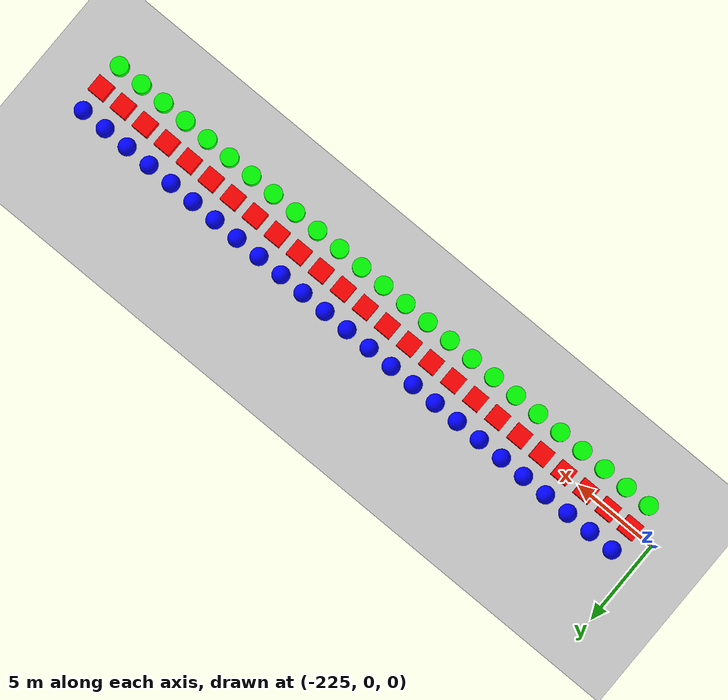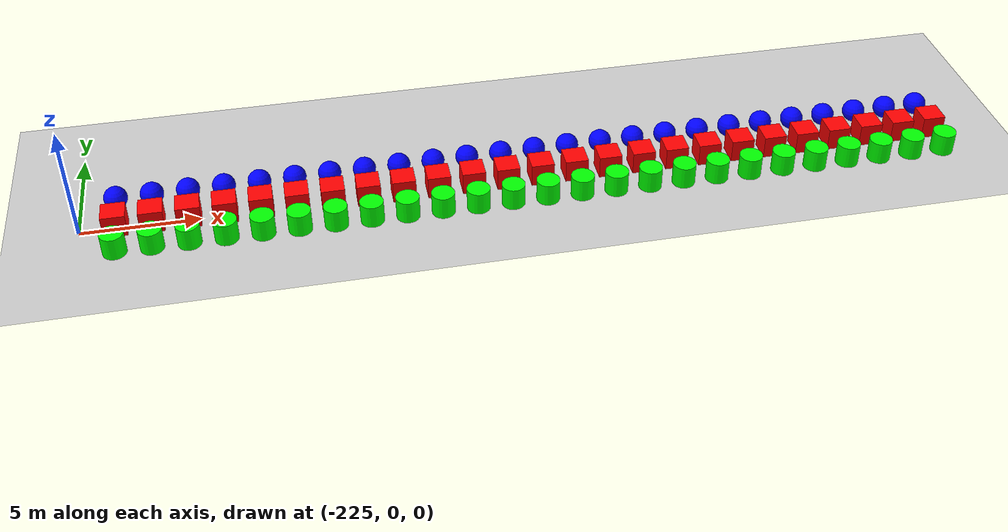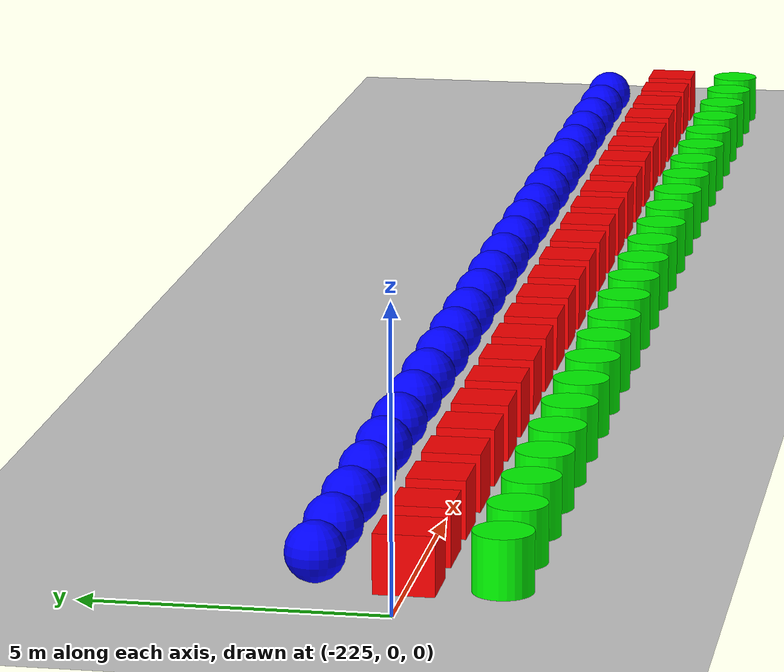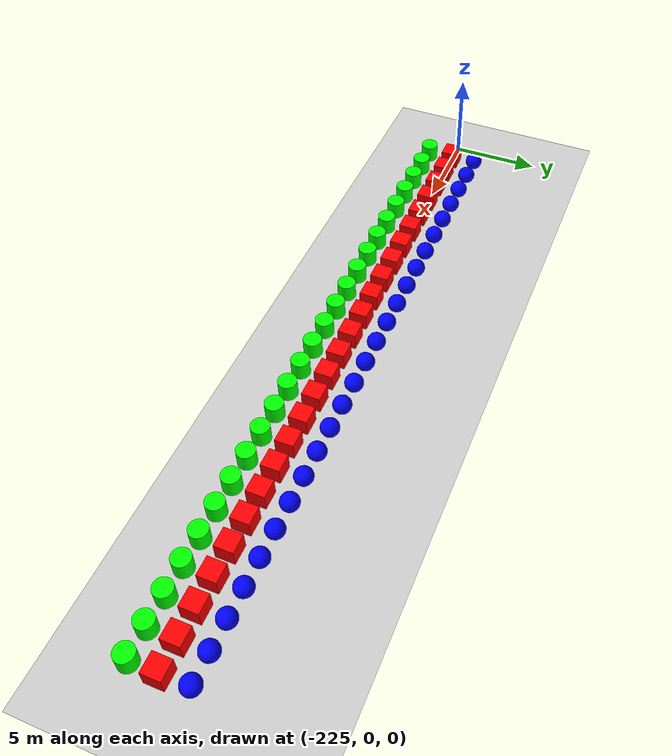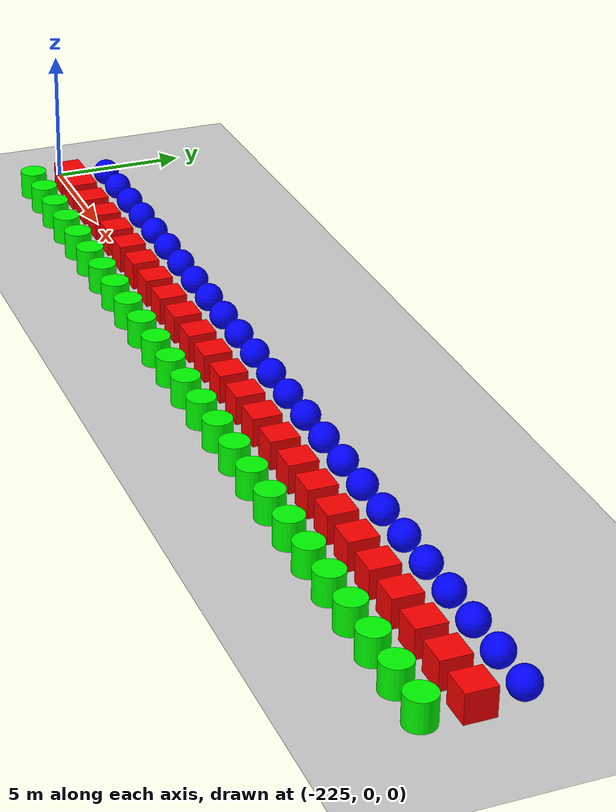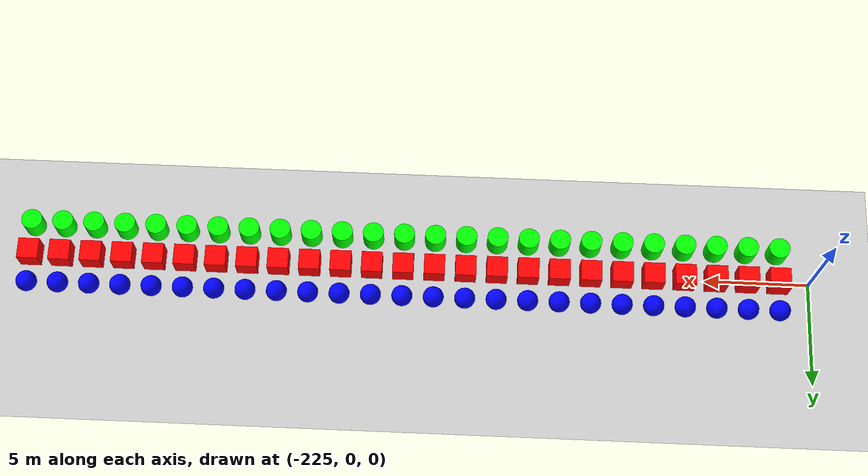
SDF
<sdf version="1.6">
 <world name="shapes">
  <model name="ground_plane">
   <static>true</static>
   <link name="link">
    <collision name="collision">
     <geometry><plane><normal>0 0 1</normal><size>100 100</size></plane></geometry>
    </collision>
    <visual name="visual">
     <geometry><plane><normal>0 0 1</normal><size>100 100</size></plane></geometry>
     <material>
      <ambient>0.8 0.8 0.8 1</ambient>
      <diffuse>0.8 0.8 0.8 1</diffuse>
      <specular>0.8 0.8 0.8 1</specular>
     </material>
    </visual>
   </link>
  </model>
  <model name="box_351">
   <static>false</static>
   <pose>-223.5 0 0.5 0 0 0</pose>
   <link name="box_link">
    <inertial>
     <inertia><ixx>1</ixx><ixy>0</ixy><ixz>0</ixz><iyy>1</iyy><iyz>0</iyz><izz>1</izz></inertia>
     <mass>1.0</mass>
    </inertial>
    <collision name="box_collision"><geometry><box><size>1 1 1</size></box></geometry></collision>
    <visual name="box_visual">
     <geometry><box><size>1 1 1</size></box></geometry>
     <material><ambient>1 0 0 1</ambient><diffuse>1 0 0 1</diffuse><specular>1 0 0 1</specular></material>
    </visual>
   </link>
  </model>
  <model name="cylinder_351">
   <static>false</static>
   <pose>-223.5 -1.5 0.5 0 0 0</pose>
   <link name="cylinder_link">
    <inertial>
     <inertia><ixx>2</ixx><ixy>0</ixy><ixz>0</ixz><iyy>2</iyy><iyz>0</iyz><izz>2</izz></inertia>
     <mass>2.0</mass>
    </inertial>
    <collision name="cylinder_collision">
     <geometry><cylinder><radius>0.5</radius><length>1.0</length></cylinder></geometry>
    </collision>
    <visual name="cylinder_visual">
     <geometry><cylinder><radius>0.5</radius><length>1.0</length></cylinder></geometry>
     <material><ambient>0 1 0 1</ambient><diffuse>0 1 0 1</diffuse><specular>0 1 0 1</specular></material>
    </visual>
   </link>
  </model>
  <model name="sphere_351">
   <static>false</static>
   <pose>-223.5 1.5 0.5 0 0 0</pose>
   <link name="sphere_link">
    <inertial>
     <inertia><ixx>3</ixx><ixy>0</ixy><ixz>0</ixz><iyy>3</iyy><iyz>0</iyz><izz>3</izz></inertia>
     <mass>3.0</mass>
    </inertial>
    <collision name="sphere_collision"><geometry><sphere><radius>0.5</radius></sphere></geometry></collision>
    <visual name="sphere_visual">
     <geometry><sphere><radius>0.5</radius></sphere></geometry>
     <material><ambient>0 0 1 1</ambient><diffuse>0 0 1 1</diffuse><specular>0 0 1 1</specular></material>
    </visual>
   </link>
  </model>
  <model name="box_352">
   <static>false</static>
   <pose>-222.0 0 0.5 0 0 0</pose>
   <link name="box_link">
    <inertial>
     <inertia><ixx>1</ixx><ixy>0</ixy><ixz>0</ixz><iyy>1</iyy><iyz>0</iyz><izz>1</izz></inertia>
     <mass>1.0</mass>
    </inertial>
    <collision name="box_collision"><geometry><box><size>1 1 1</size></box></geometry></collision>
    <visual name="box_visual">
     <geometry><box><size>1 1 1</size></box></geometry>
     <material><ambient>1 0 0 1</ambient><diffuse>1 0 0 1</diffuse><specular>1 0 0 1</specular></material>
    </visual>
   </link>
  </model>
  <model name="cylinder_352">
   <static>false</static>
   <pose>-222.0 -1.5 0.5 0 0 0</pose>
   <link name="cylinder_link">
    <inertial>
     <inertia><ixx>2</ixx><ixy>0</ixy><ixz>0</ixz><iyy>2</iyy><iyz>0</iyz><izz>2</izz></inertia>
     <mass>2.0</mass>
    </inertial>
    <collision name="cylinder_collision">
     <geometry><cylinder><radius>0.5</radius><length>1.0</length></cylinder></geometry>
    </collision>
    <visual name="cylinder_visual">
     <geometry><cylinder><radius>0.5</radius><length>1.0</length></cylinder></geometry>
     <material><ambient>0 1 0 1</ambient><diffuse>0 1 0 1</diffuse><specular>0 1 0 1</specular></material>
    </visual>
   </link>
  </model>
  <model name="sphere_352">
   <static>false</static>
   <pose>-222.0 1.5 0.5 0 0 0</pose>
   <link name="sphere_link">
    <inertial>
     <inertia><ixx>3</ixx><ixy>0</ixy><ixz>0</ixz><iyy>3</iyy><iyz>0</iyz><izz>3</izz></inertia>
     <mass>3.0</mass>
    </inertial>
    <collision name="sphere_collision"><geometry><sphere><radius>0.5</radius></sphere></geometry></collision>
    <visual name="sphere_visual">
     <geometry><sphere><radius>0.5</radius></sphere></geometry>
     <material><ambient>0 0 1 1</ambient><diffuse>0 0 1 1</diffuse><specular>0 0 1 1</specular></material>
    </visual>
   </link>
  </model>
  <model name="box_353">
   <static>false</static>
   <pose>-220.5 0 0.5 0 0 0</pose>
   <link name="box_link">
    <inertial>
     <inertia><ixx>1</ixx><ixy>0</ixy><ixz>0</ixz><iyy>1</iyy><iyz>0</iyz><izz>1</izz></inertia>
     <mass>1.0</mass>
    </inertial>
    <collision name="box_collision"><geometry><box><size>1 1 1</size></box></geometry></collision>
    <visual name="box_visual">
     <geometry><box><size>1 1 1</size></box></geometry>
     <material><ambient>1 0 0 1</ambient><diffuse>1 0 0 1</diffuse><specular>1 0 0 1</specular></material>
    </visual>
   </link>
  </model>
  <model name="cylinder_353">
   <static>false</static>
   <pose>-220.5 -1.5 0.5 0 0 0</pose>
   <link name="cylinder_link">
    <inertial>
     <inertia><ixx>2</ixx><ixy>0</ixy><ixz>0</ixz><iyy>2</iyy><iyz>0</iyz><izz>2</izz></inertia>
     <mass>2.0</mass>
    </inertial>
    <collision name="cylinder_collision">
     <geometry><cylinder><radius>0.5</radius><length>1.0</length></cylinder></geometry>
    </collision>
    <visual name="cylinder_visual">
     <geometry><cylinder><radius>0.5</radius><length>1.0</length></cylinder></geometry>
     <material><ambient>0 1 0 1</ambient><diffuse>0 1 0 1</diffuse><specular>0 1 0 1</specular></material>
    </visual>
   </link>
  </model>
  <model name="sphere_353">
   <static>false</static>
   <pose>-220.5 1.5 0.5 0 0 0</pose>
   <link name="sphere_link">
    <inertial>
     <inertia><ixx>3</ixx><ixy>0</ixy><ixz>0</ixz><iyy>3</iyy><iyz>0</iyz><izz>3</izz></inertia>
     <mass>3.0</mass>
    </inertial>
    <collision name="sphere_collision"><geometry><sphere><radius>0.5</radius></sphere></geometry></collision>
    <visual name="sphere_visual">
     <geometry><sphere><radius>0.5</radius></sphere></geometry>
     <material><ambient>0 0 1 1</ambient><diffuse>0 0 1 1</diffuse><specular>0 0 1 1</specular></material>
    </visual>
   </link>
  </model>
  <model name="box_354">
   <static>false</static>
   <pose>-219.0 0 0.5 0 0 0</pose>
   <link name="box_link">
    <inertial>
     <inertia><ixx>1</ixx><ixy>0</ixy><ixz>0</ixz><iyy>1</iyy><iyz>0</iyz><izz>1</izz></inertia>
     <mass>1.0</mass>
    </inertial>
    <collision name="box_collision"><geometry><box><size>1 1 1</size></box></geometry></collision>
    <visual name="box_visual">
     <geometry><box><size>1 1 1</size></box></geometry>
     <material><ambient>1 0 0 1</ambient><diffuse>1 0 0 1</diffuse><specular>1 0 0 1</specular></material>
    </visual>
   </link>
  </model>
  <model name="cylinder_354">
   <static>false</static>
   <pose>-219.0 -1.5 0.5 0 0 0</pose>
   <link name="cylinder_link">
    <inertial>
     <inertia><ixx>2</ixx><ixy>0</ixy><ixz>0</ixz><iyy>2</iyy><iyz>0</iyz><izz>2</izz></inertia>
     <mass>2.0</mass>
    </inertial>
    <collision name="cylinder_collision">
     <geometry><cylinder><radius>0.5</radius><length>1.0</length></cylinder></geometry>
    </collision>
    <visual name="cylinder_visual">
     <geometry><cylinder><radius>0.5</radius><length>1.0</length></cylinder></geometry>
     <material><ambient>0 1 0 1</ambient><diffuse>0 1 0 1</diffuse><specular>0 1 0 1</specular></material>
    </visual>
   </link>
  </model>
  <model name="sphere_354">
   <static>false</static>
   <pose>-219.0 1.5 0.5 0 0 0</pose>
   <link name="sphere_link">
    <inertial>
     <inertia><ixx>3</ixx><ixy>0</ixy><ixz>0</ixz><iyy>3</iyy><iyz>0</iyz><izz>3</izz></inertia>
     <mass>3.0</mass>
    </inertial>
    <collision name="sphere_collision"><geometry><sphere><radius>0.5</radius></sphere></geometry></collision>
    <visual name="sphere_visual">
     <geometry><sphere><radius>0.5</radius></sphere></geometry>
     <material><ambient>0 0 1 1</ambient><diffuse>0 0 1 1</diffuse><specular>0 0 1 1</specular></material>
    </visual>
   </link>
  </model>
  <model name="box_355">
   <static>false</static>
   <pose>-217.5 0 0.5 0 0 0</pose>
   <link name="box_link">
    <inertial>
     <inertia><ixx>1</ixx><ixy>0</ixy><ixz>0</ixz><iyy>1</iyy><iyz>0</iyz><izz>1</izz></inertia>
     <mass>1.0</mass>
    </inertial>
    <collision name="box_collision"><geometry><box><size>1 1 1</size></box></geometry></collision>
    <visual name="box_visual">
     <geometry><box><size>1 1 1</size></box></geometry>
     <material><ambient>1 0 0 1</ambient><diffuse>1 0 0 1</diffuse><specular>1 0 0 1</specular></material>
    </visual>
   </link>
  </model>
  <model name="cylinder_355">
   <static>false</static>
   <pose>-217.5 -1.5 0.5 0 0 0</pose>
   <link name="cylinder_link">
    <inertial>
     <inertia><ixx>2</ixx><ixy>0</ixy><ixz>0</ixz><iyy>2</iyy><iyz>0</iyz><izz>2</izz></inertia>
     <mass>2.0</mass>
    </inertial>
    <collision name="cylinder_collision">
     <geometry><cylinder><radius>0.5</radius><length>1.0</length></cylinder></geometry>
    </collision>
    <visual name="cylinder_visual">
     <geometry><cylinder><radius>0.5</radius><length>1.0</length></cylinder></geometry>
     <material><ambient>0 1 0 1</ambient><diffuse>0 1 0 1</diffuse><specular>0 1 0 1</specular></material>
    </visual>
   </link>
  </model>
  <model name="sphere_355">
   <static>false</static>
   <pose>-217.5 1.5 0.5 0 0 0</pose>
   <link name="sphere_link">
    <inertial>
     <inertia><ixx>3</ixx><ixy>0</ixy><ixz>0</ixz><iyy>3</iyy><iyz>0</iyz><izz>3</izz></inertia>
     <mass>3.0</mass>
    </inertial>
    <collision name="sphere_collision"><geometry><sphere><radius>0.5</radius></sphere></geometry></collision>
    <visual name="sphere_visual">
     <geometry><sphere><radius>0.5</radius></sphere></geometry>
     <material><ambient>0 0 1 1</ambient><diffuse>0 0 1 1</diffuse><specular>0 0 1 1</specular></material>
    </visual>
   </link>
  </model>
  <model name="box_356">
   <static>false</static>
   <pose>-216.0 0 0.5 0 0 0</pose>
   <link name="box_link">
    <inertial>
     <inertia><ixx>1</ixx><ixy>0</ixy><ixz>0</ixz><iyy>1</iyy><iyz>0</iyz><izz>1</izz></inertia>
     <mass>1.0</mass>
    </inertial>
    <collision name="box_collision"><geometry><box><size>1 1 1</size></box></geometry></collision>
    <visual name="box_visual">
     <geometry><box><size>1 1 1</size></box></geometry>
     <material><ambient>1 0 0 1</ambient><diffuse>1 0 0 1</diffuse><specular>1 0 0 1</specular></material>
    </visual>
   </link>
  </model>
  <model name="cylinder_356">
   <static>false</static>
   <pose>-216.0 -1.5 0.5 0 0 0</pose>
   <link name="cylinder_link">
    <inertial>
     <inertia><ixx>2</ixx><ixy>0</ixy><ixz>0</ixz><iyy>2</iyy><iyz>0</iyz><izz>2</izz></inertia>
     <mass>2.0</mass>
    </inertial>
    <collision name="cylinder_collision">
     <geometry><cylinder><radius>0.5</radius><length>1.0</length></cylinder></geometry>
    </collision>
    <visual name="cylinder_visual">
     <geometry><cylinder><radius>0.5</radius><length>1.0</length></cylinder></geometry>
     <material><ambient>0 1 0 1</ambient><diffuse>0 1 0 1</diffuse><specular>0 1 0 1</specular></material>
    </visual>
   </link>
  </model>
  <model name="sphere_356">
   <static>false</static>
   <pose>-216.0 1.5 0.5 0 0 0</pose>
   <link name="sphere_link">
    <inertial>
     <inertia><ixx>3</ixx><ixy>0</ixy><ixz>0</ixz><iyy>3</iyy><iyz>0</iyz><izz>3</izz></inertia>
     <mass>3.0</mass>
    </inertial>
    <collision name="sphere_collision"><geometry><sphere><radius>0.5</radius></sphere></geometry></collision>
    <visual name="sphere_visual">
     <geometry><sphere><radius>0.5</radius></sphere></geometry>
     <material><ambient>0 0 1 1</ambient><diffuse>0 0 1 1</diffuse><specular>0 0 1 1</specular></material>
    </visual>
   </link>
  </model>
  <model name="box_357">
   <static>false</static>
   <pose>-214.5 0 0.5 0 0 0</pose>
   <link name="box_link">
    <inertial>
     <inertia><ixx>1</ixx><ixy>0</ixy><ixz>0</ixz><iyy>1</iyy><iyz>0</iyz><izz>1</izz></inertia>
     <mass>1.0</mass>
    </inertial>
    <collision name="box_collision"><geometry><box><size>1 1 1</size></box></geometry></collision>
    <visual name="box_visual">
     <geometry><box><size>1 1 1</size></box></geometry>
     <material><ambient>1 0 0 1</ambient><diffuse>1 0 0 1</diffuse><specular>1 0 0 1</specular></material>
    </visual>
   </link>
  </model>
  <model name="cylinder_357">
   <static>false</static>
   <pose>-214.5 -1.5 0.5 0 0 0</pose>
   <link name="cylinder_link">
    <inertial>
     <inertia><ixx>2</ixx><ixy>0</ixy><ixz>0</ixz><iyy>2</iyy><iyz>0</iyz><izz>2</izz></inertia>
     <mass>2.0</mass>
    </inertial>
    <collision name="cylinder_collision">
     <geometry><cylinder><radius>0.5</radius><length>1.0</length></cylinder></geometry>
    </collision>
    <visual name="cylinder_visual">
     <geometry><cylinder><radius>0.5</radius><length>1.0</length></cylinder></geometry>
     <material><ambient>0 1 0 1</ambient><diffuse>0 1 0 1</diffuse><specular>0 1 0 1</specular></material>
    </visual>
   </link>
  </model>
  <model name="sphere_357">
   <static>false</static>
   <pose>-214.5 1.5 0.5 0 0 0</pose>
   <link name="sphere_link">
    <inertial>
     <inertia><ixx>3</ixx><ixy>0</ixy><ixz>0</ixz><iyy>3</iyy><iyz>0</iyz><izz>3</izz></inertia>
     <mass>3.0</mass>
    </inertial>
    <collision name="sphere_collision"><geometry><sphere><radius>0.5</radius></sphere></geometry></collision>
    <visual name="sphere_visual">
     <geometry><sphere><radius>0.5</radius></sphere></geometry>
     <material><ambient>0 0 1 1</ambient><diffuse>0 0 1 1</diffuse><specular>0 0 1 1</specular></material>
    </visual>
   </link>
  </model>
  <model name="box_358">
   <static>false</static>
   <pose>-213.0 0 0.5 0 0 0</pose>
   <link name="box_link">
    <inertial>
     <inertia><ixx>1</ixx><ixy>0</ixy><ixz>0</ixz><iyy>1</iyy><iyz>0</iyz><izz>1</izz></inertia>
     <mass>1.0</mass>
    </inertial>
    <collision name="box_collision"><geometry><box><size>1 1 1</size></box></geometry></collision>
    <visual name="box_visual">
     <geometry><box><size>1 1 1</size></box></geometry>
     <material><ambient>1 0 0 1</ambient><diffuse>1 0 0 1</diffuse><specular>1 0 0 1</specular></material>
    </visual>
   </link>
  </model>
  <model name="cylinder_358">
   <static>false</static>
   <pose>-213.0 -1.5 0.5 0 0 0</pose>
   <link name="cylinder_link">
    <inertial>
     <inertia><ixx>2</ixx><ixy>0</ixy><ixz>0</ixz><iyy>2</iyy><iyz>0</iyz><izz>2</izz></inertia>
     <mass>2.0</mass>
    </inertial>
    <collision name="cylinder_collision">
     <geometry><cylinder><radius>0.5</radius><length>1.0</length></cylinder></geometry>
    </collision>
    <visual name="cylinder_visual">
     <geometry><cylinder><radius>0.5</radius><length>1.0</length></cylinder></geometry>
     <material><ambient>0 1 0 1</ambient><diffuse>0 1 0 1</diffuse><specular>0 1 0 1</specular></material>
    </visual>
   </link>
  </model>
  <model name="sphere_358">
   <static>false</static>
   <pose>-213.0 1.5 0.5 0 0 0</pose>
   <link name="sphere_link">
    <inertial>
     <inertia><ixx>3</ixx><ixy>0</ixy><ixz>0</ixz><iyy>3</iyy><iyz>0</iyz><izz>3</izz></inertia>
     <mass>3.0</mass>
    </inertial>
    <collision name="sphere_collision"><geometry><sphere><radius>0.5</radius></sphere></geometry></collision>
    <visual name="sphere_visual">
     <geometry><sphere><radius>0.5</radius></sphere></geometry>
     <material><ambient>0 0 1 1</ambient><diffuse>0 0 1 1</diffuse><specular>0 0 1 1</specular></material>
    </visual>
   </link>
  </model>
  <model name="box_359">
   <static>false</static>
   <pose>-211.5 0 0.5 0 0 0</pose>
   <link name="box_link">
    <inertial>
     <inertia><ixx>1</ixx><ixy>0</ixy><ixz>0</ixz><iyy>1</iyy><iyz>0</iyz><izz>1</izz></inertia>
     <mass>1.0</mass>
    </inertial>
    <collision name="box_collision"><geometry><box><size>1 1 1</size></box></geometry></collision>
    <visual name="box_visual">
     <geometry><box><size>1 1 1</size></box></geometry>
     <material><ambient>1 0 0 1</ambient><diffuse>1 0 0 1</diffuse><specular>1 0 0 1</specular></material>
    </visual>
   </link>
  </model>
  <model name="cylinder_359">
   <static>false</static>
   <pose>-211.5 -1.5 0.5 0 0 0</pose>
   <link name="cylinder_link">
    <inertial>
     <inertia><ixx>2</ixx><ixy>0</ixy><ixz>0</ixz><iyy>2</iyy><iyz>0</iyz><izz>2</izz></inertia>
     <mass>2.0</mass>
    </inertial>
    <collision name="cylinder_collision">
     <geometry><cylinder><radius>0.5</radius><length>1.0</length></cylinder></geometry>
    </collision>
    <visual name="cylinder_visual">
     <geometry><cylinder><radius>0.5</radius><length>1.0</length></cylinder></geometry>
     <material><ambient>0 1 0 1</ambient><diffuse>0 1 0 1</diffuse><specular>0 1 0 1</specular></material>
    </visual>
   </link>
  </model>
  <model name="sphere_359">
   <static>false</static>
   <pose>-211.5 1.5 0.5 0 0 0</pose>
   <link name="sphere_link">
    <inertial>
     <inertia><ixx>3</ixx><ixy>0</ixy><ixz>0</ixz><iyy>3</iyy><iyz>0</iyz><izz>3</izz></inertia>
     <mass>3.0</mass>
    </inertial>
    <collision name="sphere_collision"><geometry><sphere><radius>0.5</radius></sphere></geometry></collision>
    <visual name="sphere_visual">
     <geometry><sphere><radius>0.5</radius></sphere></geometry>
     <material><ambient>0 0 1 1</ambient><diffuse>0 0 1 1</diffuse><specular>0 0 1 1</specular></material>
    </visual>
   </link>
  </model>
  <model name="box_360">
   <static>false</static>
   <pose>-210.0 0 0.5 0 0 0</pose>
   <link name="box_link">
    <inertial>
     <inertia><ixx>1</ixx><ixy>0</ixy><ixz>0</ixz><iyy>1</iyy><iyz>0</iyz><izz>1</izz></inertia>
     <mass>1.0</mass>
    </inertial>
    <collision name="box_collision"><geometry><box><size>1 1 1</size></box></geometry></collision>
    <visual name="box_visual">
     <geometry><box><size>1 1 1</size></box></geometry>
     <material><ambient>1 0 0 1</ambient><diffuse>1 0 0 1</diffuse><specular>1 0 0 1</specular></material>
    </visual>
   </link>
  </model>
  <model name="cylinder_360">
   <static>false</static>
   <pose>-210.0 -1.5 0.5 0 0 0</pose>
   <link name="cylinder_link">
    <inertial>
     <inertia><ixx>2</ixx><ixy>0</ixy><ixz>0</ixz><iyy>2</iyy><iyz>0</iyz><izz>2</izz></inertia>
     <mass>2.0</mass>
    </inertial>
    <collision name="cylinder_collision">
     <geometry><cylinder><radius>0.5</radius><length>1.0</length></cylinder></geometry>
    </collision>
    <visual name="cylinder_visual">
     <geometry><cylinder><radius>0.5</radius><length>1.0</length></cylinder></geometry>
     <material><ambient>0 1 0 1</ambient><diffuse>0 1 0 1</diffuse><specular>0 1 0 1</specular></material>
    </visual>
   </link>
  </model>
  <model name="sphere_360">
   <static>false</static>
   <pose>-210.0 1.5 0.5 0 0 0</pose>
   <link name="sphere_link">
    <inertial>
     <inertia><ixx>3</ixx><ixy>0</ixy><ixz>0</ixz><iyy>3</iyy><iyz>0</iyz><izz>3</izz></inertia>
     <mass>3.0</mass>
    </inertial>
    <collision name="sphere_collision"><geometry><sphere><radius>0.5</radius></sphere></geometry></collision>
    <visual name="sphere_visual">
     <geometry><sphere><radius>0.5</radius></sphere></geometry>
     <material><ambient>0 0 1 1</ambient><diffuse>0 0 1 1</diffuse><specular>0 0 1 1</specular></material>
    </visual>
   </link>
  </model>
  <model name="box_361">
   <static>false</static>
   <pose>-208.5 0 0.5 0 0 0</pose>
   <link name="box_link">
    <inertial>
     <inertia><ixx>1</ixx><ixy>0</ixy><ixz>0</ixz><iyy>1</iyy><iyz>0</iyz><izz>1</izz></inertia>
     <mass>1.0</mass>
    </inertial>
    <collision name="box_collision"><geometry><box><size>1 1 1</size></box></geometry></collision>
    <visual name="box_visual">
     <geometry><box><size>1 1 1</size></box></geometry>
     <material><ambient>1 0 0 1</ambient><diffuse>1 0 0 1</diffuse><specular>1 0 0 1</specular></material>
    </visual>
   </link>
  </model>
  <model name="cylinder_361">
   <static>false</static>
   <pose>-208.5 -1.5 0.5 0 0 0</pose>
   <link name="cylinder_link">
    <inertial>
     <inertia><ixx>2</ixx><ixy>0</ixy><ixz>0</ixz><iyy>2</iyy><iyz>0</iyz><izz>2</izz></inertia>
     <mass>2.0</mass>
    </inertial>
    <collision name="cylinder_collision">
     <geometry><cylinder><radius>0.5</radius><length>1.0</length></cylinder></geometry>
    </collision>
    <visual name="cylinder_visual">
     <geometry><cylinder><radius>0.5</radius><length>1.0</length></cylinder></geometry>
     <material><ambient>0 1 0 1</ambient><diffuse>0 1 0 1</diffuse><specular>0 1 0 1</specular></material>
    </visual>
   </link>
  </model>
  <model name="sphere_361">
   <static>false</static>
   <pose>-208.5 1.5 0.5 0 0 0</pose>
   <link name="sphere_link">
    <inertial>
     <inertia><ixx>3</ixx><ixy>0</ixy><ixz>0</ixz><iyy>3</iyy><iyz>0</iyz><izz>3</izz></inertia>
     <mass>3.0</mass>
    </inertial>
    <collision name="sphere_collision"><geometry><sphere><radius>0.5</radius></sphere></geometry></collision>
    <visual name="sphere_visual">
     <geometry><sphere><radius>0.5</radius></sphere></geometry>
     <material><ambient>0 0 1 1</ambient><diffuse>0 0 1 1</diffuse><specular>0 0 1 1</specular></material>
    </visual>
   </link>
  </model>
  <model name="box_362">
   <static>false</static>
   <pose>-207.0 0 0.5 0 0 0</pose>
   <link name="box_link">
    <inertial>
     <inertia><ixx>1</ixx><ixy>0</ixy><ixz>0</ixz><iyy>1</iyy><iyz>0</iyz><izz>1</izz></inertia>
     <mass>1.0</mass>
    </inertial>
    <collision name="box_collision"><geometry><box><size>1 1 1</size></box></geometry></collision>
    <visual name="box_visual">
     <geometry><box><size>1 1 1</size></box></geometry>
     <material><ambient>1 0 0 1</ambient><diffuse>1 0 0 1</diffuse><specular>1 0 0 1</specular></material>
    </visual>
   </link>
  </model>
  <model name="cylinder_362">
   <static>false</static>
   <pose>-207.0 -1.5 0.5 0 0 0</pose>
   <link name="cylinder_link">
    <inertial>
     <inertia><ixx>2</ixx><ixy>0</ixy><ixz>0</ixz><iyy>2</iyy><iyz>0</iyz><izz>2</izz></inertia>
     <mass>2.0</mass>
    </inertial>
    <collision name="cylinder_collision">
     <geometry><cylinder><radius>0.5</radius><length>1.0</length></cylinder></geometry>
    </collision>
    <visual name="cylinder_visual">
     <geometry><cylinder><radius>0.5</radius><length>1.0</length></cylinder></geometry>
     <material><ambient>0 1 0 1</ambient><diffuse>0 1 0 1</diffuse><specular>0 1 0 1</specular></material>
    </visual>
   </link>
  </model>
  <model name="sphere_362">
   <static>false</static>
   <pose>-207.0 1.5 0.5 0 0 0</pose>
   <link name="sphere_link">
    <inertial>
     <inertia><ixx>3</ixx><ixy>0</ixy><ixz>0</ixz><iyy>3</iyy><iyz>0</iyz><izz>3</izz></inertia>
     <mass>3.0</mass>
    </inertial>
    <collision name="sphere_collision"><geometry><sphere><radius>0.5</radius></sphere></geometry></collision>
    <visual name="sphere_visual">
     <geometry><sphere><radius>0.5</radius></sphere></geometry>
     <material><ambient>0 0 1 1</ambient><diffuse>0 0 1 1</diffuse><specular>0 0 1 1</specular></material>
    </visual>
   </link>
  </model>
  <model name="box_363">
   <static>false</static>
   <pose>-205.5 0 0.5 0 0 0</pose>
   <link name="box_link">
    <inertial>
     <inertia><ixx>1</ixx><ixy>0</ixy><ixz>0</ixz><iyy>1</iyy><iyz>0</iyz><izz>1</izz></inertia>
     <mass>1.0</mass>
    </inertial>
    <collision name="box_collision"><geometry><box><size>1 1 1</size></box></geometry></collision>
    <visual name="box_visual">
     <geometry><box><size>1 1 1</size></box></geometry>
     <material><ambient>1 0 0 1</ambient><diffuse>1 0 0 1</diffuse><specular>1 0 0 1</specular></material>
    </visual>
   </link>
  </model>
  <model name="cylinder_363">
   <static>false</static>
   <pose>-205.5 -1.5 0.5 0 0 0</pose>
   <link name="cylinder_link">
    <inertial>
     <inertia><ixx>2</ixx><ixy>0</ixy><ixz>0</ixz><iyy>2</iyy><iyz>0</iyz><izz>2</izz></inertia>
     <mass>2.0</mass>
    </inertial>
    <collision name="cylinder_collision">
     <geometry><cylinder><radius>0.5</radius><length>1.0</length></cylinder></geometry>
    </collision>
    <visual name="cylinder_visual">
     <geometry><cylinder><radius>0.5</radius><length>1.0</length></cylinder></geometry>
     <material><ambient>0 1 0 1</ambient><diffuse>0 1 0 1</diffuse><specular>0 1 0 1</specular></material>
    </visual>
   </link>
  </model>
  <model name="sphere_363">
   <static>false</static>
   <pose>-205.5 1.5 0.5 0 0 0</pose>
   <link name="sphere_link">
    <inertial>
     <inertia><ixx>3</ixx><ixy>0</ixy><ixz>0</ixz><iyy>3</iyy><iyz>0</iyz><izz>3</izz></inertia>
     <mass>3.0</mass>
    </inertial>
    <collision name="sphere_collision"><geometry><sphere><radius>0.5</radius></sphere></geometry></collision>
    <visual name="sphere_visual">
     <geometry><sphere><radius>0.5</radius></sphere></geometry>
     <material><ambient>0 0 1 1</ambient><diffuse>0 0 1 1</diffuse><specular>0 0 1 1</specular></material>
    </visual>
   </link>
  </model>
  <model name="box_364">
   <static>false</static>
   <pose>-204.0 0 0.5 0 0 0</pose>
   <link name="box_link">
    <inertial>
     <inertia><ixx>1</ixx><ixy>0</ixy><ixz>0</ixz><iyy>1</iyy><iyz>0</iyz><izz>1</izz></inertia>
     <mass>1.0</mass>
    </inertial>
    <collision name="box_collision"><geometry><box><size>1 1 1</size></box></geometry></collision>
    <visual name="box_visual">
     <geometry><box><size>1 1 1</size></box></geometry>
     <material><ambient>1 0 0 1</ambient><diffuse>1 0 0 1</diffuse><specular>1 0 0 1</specular></material>
    </visual>
   </link>
  </model>
  <model name="cylinder_364">
   <static>false</static>
   <pose>-204.0 -1.5 0.5 0 0 0</pose>
   <link name="cylinder_link">
    <inertial>
     <inertia><ixx>2</ixx><ixy>0</ixy><ixz>0</ixz><iyy>2</iyy><iyz>0</iyz><izz>2</izz></inertia>
     <mass>2.0</mass>
    </inertial>
    <collision name="cylinder_collision">
     <geometry><cylinder><radius>0.5</radius><length>1.0</length></cylinder></geometry>
    </collision>
    <visual name="cylinder_visual">
     <geometry><cylinder><radius>0.5</radius><length>1.0</length></cylinder></geometry>
     <material><ambient>0 1 0 1</ambient><diffuse>0 1 0 1</diffuse><specular>0 1 0 1</specular></material>
    </visual>
   </link>
  </model>
  <model name="sphere_364">
   <static>false</static>
   <pose>-204.0 1.5 0.5 0 0 0</pose>
   <link name="sphere_link">
    <inertial>
     <inertia><ixx>3</ixx><ixy>0</ixy><ixz>0</ixz><iyy>3</iyy><iyz>0</iyz><izz>3</izz></inertia>
     <mass>3.0</mass>
    </inertial>
    <collision name="sphere_collision"><geometry><sphere><radius>0.5</radius></sphere></geometry></collision>
    <visual name="sphere_visual">
     <geometry><sphere><radius>0.5</radius></sphere></geometry>
     <material><ambient>0 0 1 1</ambient><diffuse>0 0 1 1</diffuse><specular>0 0 1 1</specular></material>
    </visual>
   </link>
  </model>
  <model name="box_365">
   <static>false</static>
   <pose>-202.5 0 0.5 0 0 0</pose>
   <link name="box_link">
    <inertial>
     <inertia><ixx>1</ixx><ixy>0</ixy><ixz>0</ixz><iyy>1</iyy><iyz>0</iyz><izz>1</izz></inertia>
     <mass>1.0</mass>
    </inertial>
    <collision name="box_collision"><geometry><box><size>1 1 1</size></box></geometry></collision>
    <visual name="box_visual">
     <geometry><box><size>1 1 1</size></box></geometry>
     <material><ambient>1 0 0 1</ambient><diffuse>1 0 0 1</diffuse><specular>1 0 0 1</specular></material>
    </visual>
   </link>
  </model>
  <model name="cylinder_365">
   <static>false</static>
   <pose>-202.5 -1.5 0.5 0 0 0</pose>
   <link name="cylinder_link">
    <inertial>
     <inertia><ixx>2</ixx><ixy>0</ixy><ixz>0</ixz><iyy>2</iyy><iyz>0</iyz><izz>2</izz></inertia>
     <mass>2.0</mass>
    </inertial>
    <collision name="cylinder_collision">
     <geometry><cylinder><radius>0.5</radius><length>1.0</length></cylinder></geometry>
    </collision>
    <visual name="cylinder_visual">
     <geometry><cylinder><radius>0.5</radius><length>1.0</length></cylinder></geometry>
     <material><ambient>0 1 0 1</ambient><diffuse>0 1 0 1</diffuse><specular>0 1 0 1</specular></material>
    </visual>
   </link>
  </model>
  <model name="sphere_365">
   <static>false</static>
   <pose>-202.5 1.5 0.5 0 0 0</pose>
   <link name="sphere_link">
    <inertial>
     <inertia><ixx>3</ixx><ixy>0</ixy><ixz>0</ixz><iyy>3</iyy><iyz>0</iyz><izz>3</izz></inertia>
     <mass>3.0</mass>
    </inertial>
    <collision name="sphere_collision"><geometry><sphere><radius>0.5</radius></sphere></geometry></collision>
    <visual name="sphere_visual">
     <geometry><sphere><radius>0.5</radius></sphere></geometry>
     <material><ambient>0 0 1 1</ambient><diffuse>0 0 1 1</diffuse><specular>0 0 1 1</specular></material>
    </visual>
   </link>
  </model>
  <model name="box_366">
   <static>false</static>
   <pose>-201.0 0 0.5 0 0 0</pose>
   <link name="box_link">
    <inertial>
     <inertia><ixx>1</ixx><ixy>0</ixy><ixz>0</ixz><iyy>1</iyy><iyz>0</iyz><izz>1</izz></inertia>
     <mass>1.0</mass>
    </inertial>
    <collision name="box_collision"><geometry><box><size>1 1 1</size></box></geometry></collision>
    <visual name="box_visual">
     <geometry><box><size>1 1 1</size></box></geometry>
     <material><ambient>1 0 0 1</ambient><diffuse>1 0 0 1</diffuse><specular>1 0 0 1</specular></material>
    </visual>
   </link>
  </model>
  <model name="cylinder_366">
   <static>false</static>
   <pose>-201.0 -1.5 0.5 0 0 0</pose>
   <link name="cylinder_link">
    <inertial>
     <inertia><ixx>2</ixx><ixy>0</ixy><ixz>0</ixz><iyy>2</iyy><iyz>0</iyz><izz>2</izz></inertia>
     <mass>2.0</mass>
    </inertial>
    <collision name="cylinder_collision">
     <geometry><cylinder><radius>0.5</radius><length>1.0</length></cylinder></geometry>
    </collision>
    <visual name="cylinder_visual">
     <geometry><cylinder><radius>0.5</radius><length>1.0</length></cylinder></geometry>
     <material><ambient>0 1 0 1</ambient><diffuse>0 1 0 1</diffuse><specular>0 1 0 1</specular></material>
    </visual>
   </link>
  </model>
  <model name="sphere_366">
   <static>false</static>
   <pose>-201.0 1.5 0.5 0 0 0</pose>
   <link name="sphere_link">
    <inertial>
     <inertia><ixx>3</ixx><ixy>0</ixy><ixz>0</ixz><iyy>3</iyy><iyz>0</iyz><izz>3</izz></inertia>
     <mass>3.0</mass>
    </inertial>
    <collision name="sphere_collision"><geometry><sphere><radius>0.5</radius></sphere></geometry></collision>
    <visual name="sphere_visual">
     <geometry><sphere><radius>0.5</radius></sphere></geometry>
     <material><ambient>0 0 1 1</ambient><diffuse>0 0 1 1</diffuse><specular>0 0 1 1</specular></material>
    </visual>
   </link>
  </model>
  <model name="box_367">
   <static>false</static>
   <pose>-199.5 0 0.5 0 0 0</pose>
   <link name="box_link">
    <inertial>
     <inertia><ixx>1</ixx><ixy>0</ixy><ixz>0</ixz><iyy>1</iyy><iyz>0</iyz><izz>1</izz></inertia>
     <mass>1.0</mass>
    </inertial>
    <collision name="box_collision"><geometry><box><size>1 1 1</size></box></geometry></collision>
    <visual name="box_visual">
     <geometry><box><size>1 1 1</size></box></geometry>
     <material><ambient>1 0 0 1</ambient><diffuse>1 0 0 1</diffuse><specular>1 0 0 1</specular></material>
    </visual>
   </link>
  </model>
  <model name="cylinder_367">
   <static>false</static>
   <pose>-199.5 -1.5 0.5 0 0 0</pose>
   <link name="cylinder_link">
    <inertial>
     <inertia><ixx>2</ixx><ixy>0</ixy><ixz>0</ixz><iyy>2</iyy><iyz>0</iyz><izz>2</izz></inertia>
     <mass>2.0</mass>
    </inertial>
    <collision name="cylinder_collision">
     <geometry><cylinder><radius>0.5</radius><length>1.0</length></cylinder></geometry>
    </collision>
    <visual name="cylinder_visual">
     <geometry><cylinder><radius>0.5</radius><length>1.0</length></cylinder></geometry>
     <material><ambient>0 1 0 1</ambient><diffuse>0 1 0 1</diffuse><specular>0 1 0 1</specular></material>
    </visual>
   </link>
  </model>
  <model name="sphere_367">
   <static>false</static>
   <pose>-199.5 1.5 0.5 0 0 0</pose>
   <link name="sphere_link">
    <inertial>
     <inertia><ixx>3</ixx><ixy>0</ixy><ixz>0</ixz><iyy>3</iyy><iyz>0</iyz><izz>3</izz></inertia>
     <mass>3.0</mass>
    </inertial>
    <collision name="sphere_collision"><geometry><sphere><radius>0.5</radius></sphere></geometry></collision>
    <visual name="sphere_visual">
     <geometry><sphere><radius>0.5</radius></sphere></geometry>
     <material><ambient>0 0 1 1</ambient><diffuse>0 0 1 1</diffuse><specular>0 0 1 1</specular></material>
    </visual>
   </link>
  </model>
  <model name="box_368">
   <static>false</static>
   <pose>-198.0 0 0.5 0 0 0</pose>
   <link name="box_link">
    <inertial>
     <inertia><ixx>1</ixx><ixy>0</ixy><ixz>0</ixz><iyy>1</iyy><iyz>0</iyz><izz>1</izz></inertia>
     <mass>1.0</mass>
    </inertial>
    <collision name="box_collision"><geometry><box><size>1 1 1</size></box></geometry></collision>
    <visual name="box_visual">
     <geometry><box><size>1 1 1</size></box></geometry>
     <material><ambient>1 0 0 1</ambient><diffuse>1 0 0 1</diffuse><specular>1 0 0 1</specular></material>
    </visual>
   </link>
  </model>
  <model name="cylinder_368">
   <static>false</static>
   <pose>-198.0 -1.5 0.5 0 0 0</pose>
   <link name="cylinder_link">
    <inertial>
     <inertia><ixx>2</ixx><ixy>0</ixy><ixz>0</ixz><iyy>2</iyy><iyz>0</iyz><izz>2</izz></inertia>
     <mass>2.0</mass>
    </inertial>
    <collision name="cylinder_collision">
     <geometry><cylinder><radius>0.5</radius><length>1.0</length></cylinder></geometry>
    </collision>
    <visual name="cylinder_visual">
     <geometry><cylinder><radius>0.5</radius><length>1.0</length></cylinder></geometry>
     <material><ambient>0 1 0 1</ambient><diffuse>0 1 0 1</diffuse><specular>0 1 0 1</specular></material>
    </visual>
   </link>
  </model>
  <model name="sphere_368">
   <static>false</static>
   <pose>-198.0 1.5 0.5 0 0 0</pose>
   <link name="sphere_link">
    <inertial>
     <inertia><ixx>3</ixx><ixy>0</ixy><ixz>0</ixz><iyy>3</iyy><iyz>0</iyz><izz>3</izz></inertia>
     <mass>3.0</mass>
    </inertial>
    <collision name="sphere_collision"><geometry><sphere><radius>0.5</radius></sphere></geometry></collision>
    <visual name="sphere_visual">
     <geometry><sphere><radius>0.5</radius></sphere></geometry>
     <material><ambient>0 0 1 1</ambient><diffuse>0 0 1 1</diffuse><specular>0 0 1 1</specular></material>
    </visual>
   </link>
  </model>
  <model name="box_369">
   <static>false</static>
   <pose>-196.5 0 0.5 0 0 0</pose>
   <link name="box_link">
    <inertial>
     <inertia><ixx>1</ixx><ixy>0</ixy><ixz>0</ixz><iyy>1</iyy><iyz>0</iyz><izz>1</izz></inertia>
     <mass>1.0</mass>
    </inertial>
    <collision name="box_collision"><geometry><box><size>1 1 1</size></box></geometry></collision>
    <visual name="box_visual">
     <geometry><box><size>1 1 1</size></box></geometry>
     <material><ambient>1 0 0 1</ambient><diffuse>1 0 0 1</diffuse><specular>1 0 0 1</specular></material>
    </visual>
   </link>
  </model>
  <model name="cylinder_369">
   <static>false</static>
   <pose>-196.5 -1.5 0.5 0 0 0</pose>
   <link name="cylinder_link">
    <inertial>
     <inertia><ixx>2</ixx><ixy>0</ixy><ixz>0</ixz><iyy>2</iyy><iyz>0</iyz><izz>2</izz></inertia>
     <mass>2.0</mass>
    </inertial>
    <collision name="cylinder_collision">
     <geometry><cylinder><radius>0.5</radius><length>1.0</length></cylinder></geometry>
    </collision>
    <visual name="cylinder_visual">
     <geometry><cylinder><radius>0.5</radius><length>1.0</length></cylinder></geometry>
     <material><ambient>0 1 0 1</ambient><diffuse>0 1 0 1</diffuse><specular>0 1 0 1</specular></material>
    </visual>
   </link>
  </model>
  <model name="sphere_369">
   <static>false</static>
   <pose>-196.5 1.5 0.5 0 0 0</pose>
   <link name="sphere_link">
    <inertial>
     <inertia><ixx>3</ixx><ixy>0</ixy><ixz>0</ixz><iyy>3</iyy><iyz>0</iyz><izz>3</izz></inertia>
     <mass>3.0</mass>
    </inertial>
    <collision name="sphere_collision"><geometry><sphere><radius>0.5</radius></sphere></geometry></collision>
    <visual name="sphere_visual">
     <geometry><sphere><radius>0.5</radius></sphere></geometry>
     <material><ambient>0 0 1 1</ambient><diffuse>0 0 1 1</diffuse><specular>0 0 1 1</specular></material>
    </visual>
   </link>
  </model>
  <model name="box_370">
   <static>false</static>
   <pose>-195.0 0 0.5 0 0 0</pose>
   <link name="box_link">
    <inertial>
     <inertia><ixx>1</ixx><ixy>0</ixy><ixz>0</ixz><iyy>1</iyy><iyz>0</iyz><izz>1</izz></inertia>
     <mass>1.0</mass>
    </inertial>
    <collision name="box_collision"><geometry><box><size>1 1 1</size></box></geometry></collision>
    <visual name="box_visual">
     <geometry><box><size>1 1 1</size></box></geometry>
     <material><ambient>1 0 0 1</ambient><diffuse>1 0 0 1</diffuse><specular>1 0 0 1</specular></material>
    </visual>
   </link>
  </model>
  <model name="cylinder_370">
   <static>false</static>
   <pose>-195.0 -1.5 0.5 0 0 0</pose>
   <link name="cylinder_link">
    <inertial>
     <inertia><ixx>2</ixx><ixy>0</ixy><ixz>0</ixz><iyy>2</iyy><iyz>0</iyz><izz>2</izz></inertia>
     <mass>2.0</mass>
    </inertial>
    <collision name="cylinder_collision">
     <geometry><cylinder><radius>0.5</radius><length>1.0</length></cylinder></geometry>
    </collision>
    <visual name="cylinder_visual">
     <geometry><cylinder><radius>0.5</radius><length>1.0</length></cylinder></geometry>
     <material><ambient>0 1 0 1</ambient><diffuse>0 1 0 1</diffuse><specular>0 1 0 1</specular></material>
    </visual>
   </link>
  </model>
  <model name="sphere_370">
   <static>false</static>
   <pose>-195.0 1.5 0.5 0 0 0</pose>
   <link name="sphere_link">
    <inertial>
     <inertia><ixx>3</ixx><ixy>0</ixy><ixz>0</ixz><iyy>3</iyy><iyz>0</iyz><izz>3</izz></inertia>
     <mass>3.0</mass>
    </inertial>
    <collision name="sphere_collision"><geometry><sphere><radius>0.5</radius></sphere></geometry></collision>
    <visual name="sphere_visual">
     <geometry><sphere><radius>0.5</radius></sphere></geometry>
     <material><ambient>0 0 1 1</ambient><diffuse>0 0 1 1</diffuse><specular>0 0 1 1</specular></material>
    </visual>
   </link>
  </model>
  <model name="box_371">
   <static>false</static>
   <pose>-193.5 0 0.5 0 0 0</pose>
   <link name="box_link">
    <inertial>
     <inertia><ixx>1</ixx><ixy>0</ixy><ixz>0</ixz><iyy>1</iyy><iyz>0</iyz><izz>1</izz></inertia>
     <mass>1.0</mass>
    </inertial>
    <collision name="box_collision"><geometry><box><size>1 1 1</size></box></geometry></collision>
    <visual name="box_visual">
     <geometry><box><size>1 1 1</size></box></geometry>
     <material><ambient>1 0 0 1</ambient><diffuse>1 0 0 1</diffuse><specular>1 0 0 1</specular></material>
    </visual>
   </link>
  </model>
  <model name="cylinder_371">
   <static>false</static>
   <pose>-193.5 -1.5 0.5 0 0 0</pose>
   <link name="cylinder_link">
    <inertial>
     <inertia><ixx>2</ixx><ixy>0</ixy><ixz>0</ixz><iyy>2</iyy><iyz>0</iyz><izz>2</izz></inertia>
     <mass>2.0</mass>
    </inertial>
    <collision name="cylinder_collision">
     <geometry><cylinder><radius>0.5</radius><length>1.0</length></cylinder></geometry>
    </collision>
    <visual name="cylinder_visual">
     <geometry><cylinder><radius>0.5</radius><length>1.0</length></cylinder></geometry>
     <material><ambient>0 1 0 1</ambient><diffuse>0 1 0 1</diffuse><specular>0 1 0 1</specular></material>
    </visual>
   </link>
  </model>
  <model name="sphere_371">
   <static>false</static>
   <pose>-193.5 1.5 0.5 0 0 0</pose>
   <link name="sphere_link">
    <inertial>
     <inertia><ixx>3</ixx><ixy>0</ixy><ixz>0</ixz><iyy>3</iyy><iyz>0</iyz><izz>3</izz></inertia>
     <mass>3.0</mass>
    </inertial>
    <collision name="sphere_collision"><geometry><sphere><radius>0.5</radius></sphere></geometry></collision>
    <visual name="sphere_visual">
     <geometry><sphere><radius>0.5</radius></sphere></geometry>
     <material><ambient>0 0 1 1</ambient><diffuse>0 0 1 1</diffuse><specular>0 0 1 1</specular></material>
    </visual>
   </link>
  </model>
  <model name="box_372">
   <static>false</static>
   <pose>-192.0 0 0.5 0 0 0</pose>
   <link name="box_link">
    <inertial>
     <inertia><ixx>1</ixx><ixy>0</ixy><ixz>0</ixz><iyy>1</iyy><iyz>0</iyz><izz>1</izz></inertia>
     <mass>1.0</mass>
    </inertial>
    <collision name="box_collision"><geometry><box><size>1 1 1</size></box></geometry></collision>
    <visual name="box_visual">
     <geometry><box><size>1 1 1</size></box></geometry>
     <material><ambient>1 0 0 1</ambient><diffuse>1 0 0 1</diffuse><specular>1 0 0 1</specular></material>
    </visual>
   </link>
  </model>
  <model name="cylinder_372">
   <static>false</static>
   <pose>-192.0 -1.5 0.5 0 0 0</pose>
   <link name="cylinder_link">
    <inertial>
     <inertia><ixx>2</ixx><ixy>0</ixy><ixz>0</ixz><iyy>2</iyy><iyz>0</iyz><izz>2</izz></inertia>
     <mass>2.0</mass>
    </inertial>
    <collision name="cylinder_collision">
     <geometry><cylinder><radius>0.5</radius><length>1.0</length></cylinder></geometry>
    </collision>
    <visual name="cylinder_visual">
     <geometry><cylinder><radius>0.5</radius><length>1.0</length></cylinder></geometry>
     <material><ambient>0 1 0 1</ambient><diffuse>0 1 0 1</diffuse><specular>0 1 0 1</specular></material>
    </visual>
   </link>
  </model>
  <model name="sphere_372">
   <static>false</static>
   <pose>-192.0 1.5 0.5 0 0 0</pose>
   <link name="sphere_link">
    <inertial>
     <inertia><ixx>3</ixx><ixy>0</ixy><ixz>0</ixz><iyy>3</iyy><iyz>0</iyz><izz>3</izz></inertia>
     <mass>3.0</mass>
    </inertial>
    <collision name="sphere_collision"><geometry><sphere><radius>0.5</radius></sphere></geometry></collision>
    <visual name="sphere_visual">
     <geometry><sphere><radius>0.5</radius></sphere></geometry>
     <material><ambient>0 0 1 1</ambient><diffuse>0 0 1 1</diffuse><specular>0 0 1 1</specular></material>
    </visual>
   </link>
  </model>
  <model name="box_373">
   <static>false</static>
   <pose>-190.5 0 0.5 0 0 0</pose>
   <link name="box_link">
    <inertial>
     <inertia><ixx>1</ixx><ixy>0</ixy><ixz>0</ixz><iyy>1</iyy><iyz>0</iyz><izz>1</izz></inertia>
     <mass>1.0</mass>
    </inertial>
    <collision name="box_collision"><geometry><box><size>1 1 1</size></box></geometry></collision>
    <visual name="box_visual">
     <geometry><box><size>1 1 1</size></box></geometry>
     <material><ambient>1 0 0 1</ambient><diffuse>1 0 0 1</diffuse><specular>1 0 0 1</specular></material>
    </visual>
   </link>
  </model>
  <model name="cylinder_373">
   <static>false</static>
   <pose>-190.5 -1.5 0.5 0 0 0</pose>
   <link name="cylinder_link">
    <inertial>
     <inertia><ixx>2</ixx><ixy>0</ixy><ixz>0</ixz><iyy>2</iyy><iyz>0</iyz><izz>2</izz></inertia>
     <mass>2.0</mass>
    </inertial>
    <collision name="cylinder_collision">
     <geometry><cylinder><radius>0.5</radius><length>1.0</length></cylinder></geometry>
    </collision>
    <visual name="cylinder_visual">
     <geometry><cylinder><radius>0.5</radius><length>1.0</length></cylinder></geometry>
     <material><ambient>0 1 0 1</ambient><diffuse>0 1 0 1</diffuse><specular>0 1 0 1</specular></material>
    </visual>
   </link>
  </model>
  <model name="sphere_373">
   <static>false</static>
   <pose>-190.5 1.5 0.5 0 0 0</pose>
   <link name="sphere_link">
    <inertial>
     <inertia><ixx>3</ixx><ixy>0</ixy><ixz>0</ixz><iyy>3</iyy><iyz>0</iyz><izz>3</izz></inertia>
     <mass>3.0</mass>
    </inertial>
    <collision name="sphere_collision"><geometry><sphere><radius>0.5</radius></sphere></geometry></collision>
    <visual name="sphere_visual">
     <geometry><sphere><radius>0.5</radius></sphere></geometry>
     <material><ambient>0 0 1 1</ambient><diffuse>0 0 1 1</diffuse><specular>0 0 1 1</specular></material>
    </visual>
   </link>
  </model>
  <model name="box_374">
   <static>false</static>
   <pose>-189.0 0 0.5 0 0 0</pose>
   <link name="box_link">
    <inertial>
     <inertia><ixx>1</ixx><ixy>0</ixy><ixz>0</ixz><iyy>1</iyy><iyz>0</iyz><izz>1</izz></inertia>
     <mass>1.0</mass>
    </inertial>
    <collision name="box_collision"><geometry><box><size>1 1 1</size></box></geometry></collision>
    <visual name="box_visual">
     <geometry><box><size>1 1 1</size></box></geometry>
     <material><ambient>1 0 0 1</ambient><diffuse>1 0 0 1</diffuse><specular>1 0 0 1</specular></material>
    </visual>
   </link>
  </model>
  <model name="cylinder_374">
   <static>false</static>
   <pose>-189.0 -1.5 0.5 0 0 0</pose>
   <link name="cylinder_link">
    <inertial>
     <inertia><ixx>2</ixx><ixy>0</ixy><ixz>0</ixz><iyy>2</iyy><iyz>0</iyz><izz>2</izz></inertia>
     <mass>2.0</mass>
    </inertial>
    <collision name="cylinder_collision">
     <geometry><cylinder><radius>0.5</radius><length>1.0</length></cylinder></geometry>
    </collision>
    <visual name="cylinder_visual">
     <geometry><cylinder><radius>0.5</radius><length>1.0</length></cylinder></geometry>
     <material><ambient>0 1 0 1</ambient><diffuse>0 1 0 1</diffuse><specular>0 1 0 1</specular></material>
    </visual>
   </link>
  </model>
  <model name="sphere_374">
   <static>false</static>
   <pose>-189.0 1.5 0.5 0 0 0</pose>
   <link name="sphere_link">
    <inertial>
     <inertia><ixx>3</ixx><ixy>0</ixy><ixz>0</ixz><iyy>3</iyy><iyz>0</iyz><izz>3</izz></inertia>
     <mass>3.0</mass>
    </inertial>
    <collision name="sphere_collision"><geometry><sphere><radius>0.5</radius></sphere></geometry></collision>
    <visual name="sphere_visual">
     <geometry><sphere><radius>0.5</radius></sphere></geometry>
     <material><ambient>0 0 1 1</ambient><diffuse>0 0 1 1</diffuse><specular>0 0 1 1</specular></material>
    </visual>
   </link>
  </model>
  <model name="box_375">
   <static>false</static>
   <pose>-187.5 0 0.5 0 0 0</pose>
   <link name="box_link">
    <inertial>
     <inertia><ixx>1</ixx><ixy>0</ixy><ixz>0</ixz><iyy>1</iyy><iyz>0</iyz><izz>1</izz></inertia>
     <mass>1.0</mass>
    </inertial>
    <collision name="box_collision"><geometry><box><size>1 1 1</size></box></geometry></collision>
    <visual name="box_visual">
     <geometry><box><size>1 1 1</size></box></geometry>
     <material><ambient>1 0 0 1</ambient><diffuse>1 0 0 1</diffuse><specular>1 0 0 1</specular></material>
    </visual>
   </link>
  </model>
  <model name="cylinder_375">
   <static>false</static>
   <pose>-187.5 -1.5 0.5 0 0 0</pose>
   <link name="cylinder_link">
    <inertial>
     <inertia><ixx>2</ixx><ixy>0</ixy><ixz>0</ixz><iyy>2</iyy><iyz>0</iyz><izz>2</izz></inertia>
     <mass>2.0</mass>
    </inertial>
    <collision name="cylinder_collision">
     <geometry><cylinder><radius>0.5</radius><length>1.0</length></cylinder></geometry>
    </collision>
    <visual name="cylinder_visual">
     <geometry><cylinder><radius>0.5</radius><length>1.0</length></cylinder></geometry>
     <material><ambient>0 1 0 1</ambient><diffuse>0 1 0 1</diffuse><specular>0 1 0 1</specular></material>
    </visual>
   </link>
  </model>
  <model name="sphere_375">
   <static>false</static>
   <pose>-187.5 1.5 0.5 0 0 0</pose>
   <link name="sphere_link">
    <inertial>
     <inertia><ixx>3</ixx><ixy>0</ixy><ixz>0</ixz><iyy>3</iyy><iyz>0</iyz><izz>3</izz></inertia>
     <mass>3.0</mass>
    </inertial>
    <collision name="sphere_collision"><geometry><sphere><radius>0.5</radius></sphere></geometry></collision>
    <visual name="sphere_visual">
     <geometry><sphere><radius>0.5</radius></sphere></geometry>
     <material><ambient>0 0 1 1</ambient><diffuse>0 0 1 1</diffuse><specular>0 0 1 1</specular></material>
    </visual>
   </link>
  </model>
 </world>
</sdf>
